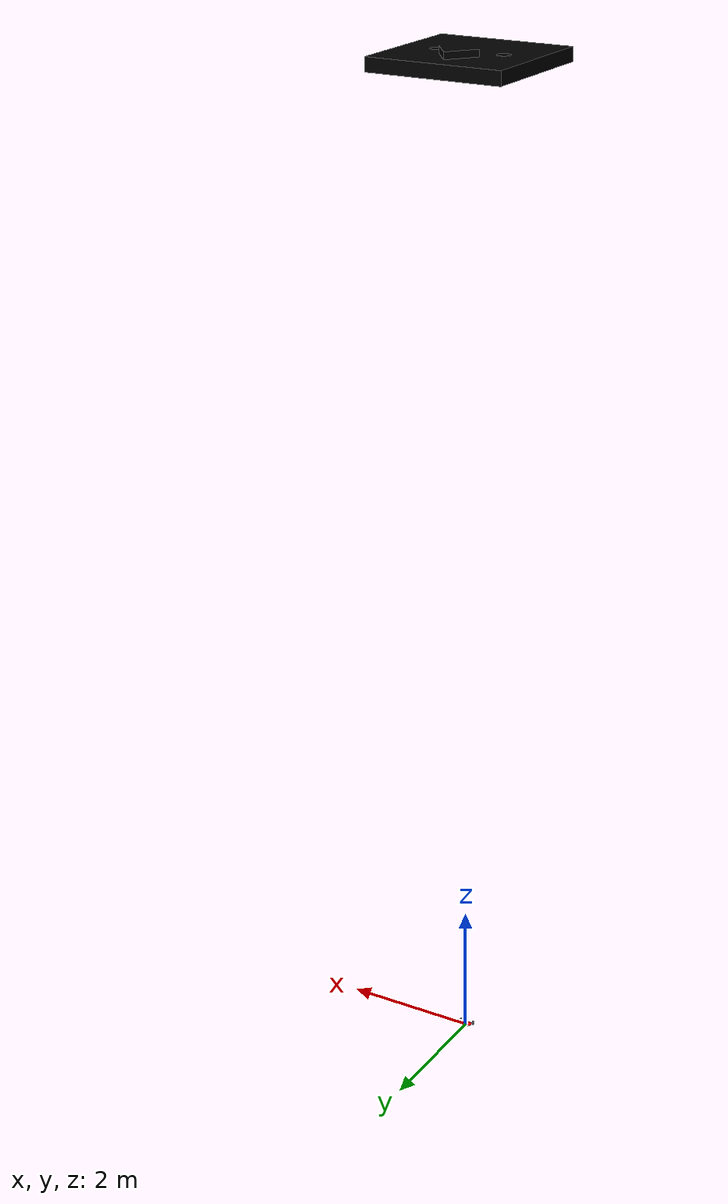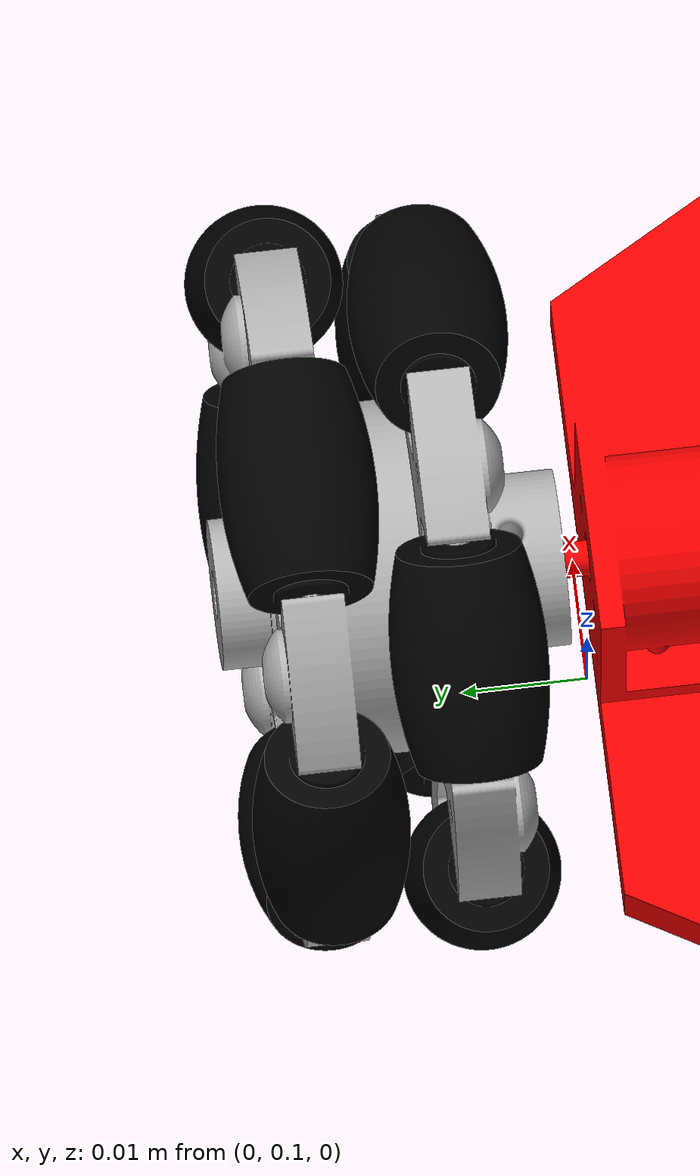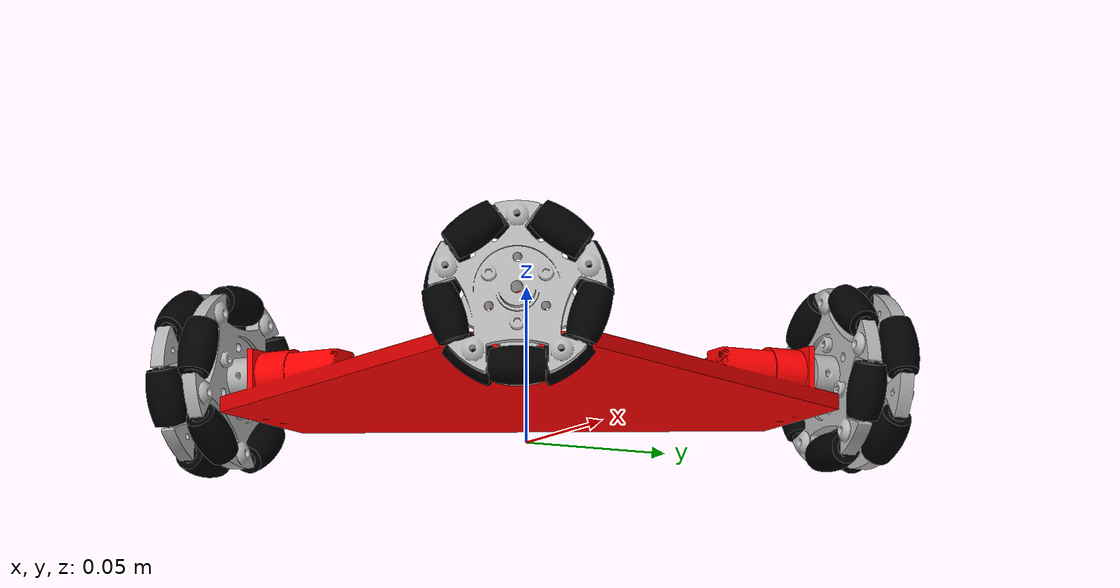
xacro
<?xml version="1.0"?>
<robot xmlns:xacro="http://www.ros.org/wiki/xacro" name="robot_name">

    <material name="black">
        <color rgba="0 0 0 1.0"/>
    </material>

    <material name="red">
        <color rgba="1.0 0 0 1.0"/>
    </material>

    <material name="LightGrey">
        <color rgba="0.7 0.7 0.7 1.0"/>
    </material>

    <link name="base_footprint">
        <origin xyz="0 0 0" rpy="0 0 0"/>
    </link>
    <link name="base_link">
        <visual>
            <geometry>
                <mesh filename="package://kiwi_drive/meshes/kiwibasev4_scaled.stl"/>
            </geometry>
            <material name="red"/>
        </visual>
        <collision>
            <geometry>
                <mesh filename="package://kiwi_drive/meshes/kiwibasev4_scaled.stl"/>
            </geometry>
        </collision>
        <inertial>
            <mass value="1"/> <!-- 0.918828 just for simulation, the actual mass is slightly diffrent -->
            <origin xyz="0.0 0.0 0.0" rpy="0.0 0.0 0.0"/>

                <inertia ixx="0.0025083"
                         ixy="0.0"
                         ixz="0.0"
                         iyy="0.0025083"
                         iyz="0.0"
                         izz="5e-3"/>
        </inertial>
    </link>

    <joint name="base_joint" type="fixed">
        <parent link="base_footprint"/>
        <child link="base_link"/>
        <origin xyz="0 0 0.014667" rpy="0 0 0"/>
        <axis xyz="0 0 1"/>
    </joint>

    <xacro:property name="pi" value="3.1415"/>
    <xacro:property name="castor_mass" value="0.014933" />
    <xacro:property name="wheel_mass" value="0.5" />

    <xacro:macro name="castor" params="parent_name name x y z r p yaw">
        <link name="${name}_link">
            <visual>
                <geometry>
                    <mesh filename="package://kiwi_drive/meshes/omniwheelcastororigin_scaled.stl"/>
                </geometry>
                <material name="black"/>
            </visual>
            <collision>
                <geometry>
                    <mesh filename="package://kiwi_drive/meshes/omniwheelcastororigin_scaled.stl"/>
                </geometry>
                <surface>
                    <friction>
                    <ode>
                        <mu>1.0</mu>
                        <mu2>1.0</mu2>
                        <slip1>0.0</slip1>
                        <slip2>0.0</slip2>
                    </ode>
                    </friction>
                    <contact>
                    <ode>
                        <min_depth>0.01</min_depth>
                    </ode>
                    </contact>
                </surface>
            </collision>
            <inertial>
                <mass value="${castor_mass}"/>
                <origin xyz="0.0 0.0 0.0" rpy="0.0 0.0 0.0"/>
                <inertia ixx="0.000005"
                         ixy="0.0"
                         ixz="0.0"
                         iyy="0.000005"
                         iyz="0.0"
                         izz="0.000005"/>
            </inertial>
        </link>
        <joint name="${name}_joint" type="fixed">
            <parent link="${parent_name}"/>
            <child link="${name}_link"/>
            <origin xyz="${x/1000} ${y/1000} ${z/1000}" rpy="${r} ${p} ${yaw}"/>
            <axis xyz="1 0 0"/>
            <dynamics friction="0.9"/>
        </joint>

        <gazebo reference="${name}_link">
            <material>Gazebo/Black</material>
        </gazebo>
    </xacro:macro>

    <xacro:macro name="wheel" params="name x y z r p yaw">
        <link name="wheel_${name}_link">
            <visual>
                <geometry>
                    <mesh filename="package://kiwi_drive/meshes/omniwheelorigin_scaled.stl"/>
                </geometry>
                <material name="LightGrey"/>
            </visual>
            <collision>
                <geometry>
                    <mesh filename="package://kiwi_drive/meshes/omniwheelorigin_scaled.stl"/>
                </geometry>
                <surface>
                    <friction>
                    <ode>
                        <mu>1.0</mu>
                        <mu2>1.0</mu2>
                        <slip1>0.0</slip1>
                        <slip2>0.0</slip2>
                    </ode>
                    </friction>
                    <contact>
                    <ode>
                        <min_depth>0.01</min_depth>
                    </ode>
                    </contact>
                </surface>
            </collision>
            <inertial>
                <mass value="${wheel_mass}"/>
                <origin xyz="0.0 0.0 0.015" rpy="0.0 0.0 0.0"/>
                <inertia ixx="3.893177779e-5"
                         ixy="0.0"
                         ixz="0.0"
                         iyy="3.893177779e-5"
                         iyz="0.0"
                         izz="5.378022225e-5"/>
            </inertial>
        </link>

        <joint name="wheel_${name}_joint" type="continuous">
            <parent link="base_link"/>
            <child link="wheel_${name}_link"/>
            <!-- mm to meters convertion required/-->
            <origin xyz="${x/1000} ${y/1000} ${z/1000}" rpy="${r} ${p} ${yaw}"/>
            <axis xyz="0 0 1"/>
            <limit effort="1" velocity="100.0"/>
            <dynamics damping="0.0" friction="0.6"/>
        </joint>

        <gazebo reference="wheel_${name}_link">
            <material>Gazebo/LightGrey</material>
        </gazebo>

        <transmission name="${name}_wheel_transmission" type="SimpleTransmission">
            <type>transmission_interface/SimpleTransmission</type>
            <actuator name="wheel_${name}_actuator">
                <mechanicalReduction>1</mechanicalReduction>
                <hardwareInterface>VelocityJointInterface</hardwareInterface>
            </actuator>
            <joint name="wheel_${name}_joint">
                <hardwareInterface>hardware_interface/VelocityJointInterface</hardwareInterface>
            </joint>
        </transmission>

        <xacro:castor parent_name="wheel_${name}_link" name="${name}_castor_1" x="0.0" y="24.059" z="9.0" r="0.0" p="0.0" yaw="0.0"/>
        <xacro:castor parent_name="wheel_${name}_link" name="${name}_castor_2" x="22.882" y="7.435" z="9.0" r="0.0" p="0.0" yaw="${(pi/180)*108*1}"/>
        <xacro:castor parent_name="wheel_${name}_link" name="${name}_castor_3" x="14.142" y="-19.464" z="9.0" r="0.0" p="0.0" yaw="${(pi/180)*108*2}"/>
        <xacro:castor parent_name="wheel_${name}_link" name="${name}_castor_4" x="-14.142" y="-19.464" z="9.0" r="0.0" p="0.0" yaw="${(pi/180)*108*3}"/>
        <xacro:castor parent_name="wheel_${name}_link" name="${name}_castor_5" x="-22.882" y="7.435" z="9.0" r="0.0" p="0.0" yaw="${(pi/180)*108*4}"/>
        <xacro:castor parent_name="wheel_${name}_link" name="${name}_castor_6" x="0.0" y="-24.059" z="21.0" r="0.0" p="0.0" yaw="0.0"/>
        <xacro:castor parent_name="wheel_${name}_link" name="${name}_castor_7" x="-22.882" y="-7.435" z="21.0" r="0.0" p="0.0" yaw="${(pi/180)*108*1}"/>
        <xacro:castor parent_name="wheel_${name}_link" name="${name}_castor_8" x="-14.142" y="19.464" z="21.0" r="0.0" p="0.0" yaw="${(pi/180)*108*2}"/>
        <xacro:castor parent_name="wheel_${name}_link" name="${name}_castor_9" x="14.142" y="19.464" z="21.0" r="0.0" p="0.0" yaw="${(pi/180)*108*3}"/>
        <xacro:castor parent_name="wheel_${name}_link" name="${name}_castor_10" x="22.882" y="-7.435" z="21.0" r="0.0" p="0.0" yaw="${(pi/180)*108*4}"/>
    </xacro:macro>

    <xacro:wheel name="back" x="0.33" y="102.067" z="14.667" r="${-pi/2}" p="0.0" yaw="0.0"/>
    <xacro:wheel name="left" x="88.263" y="-50.237" z="14.667" r="${pi/2}" p="0.0" yaw="${pi/3}"/>
    <xacro:wheel name="right" x="-87.603" y="-50.237" z="14.667" r="${pi/2}" p="0.0" yaw="${-pi/3}"/>

    <link name="imu_link">
        <visual>
            <geometry>
                <mesh filename="package://kiwi_drive/meshes/imuorigin_scaled.stl"/>
            </geometry>
            <material name="black"/>
        </visual>
        <collision>
            <geometry>
                <mesh filename="package://kiwi_drive/meshes/imuorigin_scaled.stl"/>
            </geometry>
        </collision>
        <inertial>
            <mass value="0.001"/> just for simulation, the actual mass is slightly diffrent
            <origin xyz="0.0 6.5e-5 1.023e-3" rpy="0.0 0.0 0.0"/>
                <inertia ixx="2.13412e-7"
                         ixy="0.0"
                         ixz="0.0"
                         iyy="2.09261e-7"
                         iyz="-6.03e-10"
                         izz="4.18117e-7"/>
        </inertial>
    </link>

    <joint name="imu_joint" type="fixed">
        <parent link="base_link"/>
        <child link="imu_link"/>
        <origin xyz="0 0 0.005" rpy="0 0 0"/>
    </joint>

    <!-- Gazebo plugin for ROS Control -->
    <gazebo>
        <plugin name="gazebo_ros_control" filename="libgazebo_ros_control.so">
            <robotNamespace>/</robotNamespace>
        </plugin>

        <plugin name="WheelSlipPlugin" filename="libWheelSlipPlugin.so">
            <wheel link_name="wheel_back_link">
                <slip_compliance_lateral>0.0</slip_compliance_lateral>
                <slip_compliance_longitudinal>0.1</slip_compliance_longitudinal>
                <wheel_normal_force>100</wheel_normal_force>
                <wheel_radius>0.014667</wheel_radius>
            </wheel>
            <wheel link_name="wheel_left_link">
                <slip_compliance_lateral>0.0</slip_compliance_lateral>
                <slip_compliance_longitudinal>0.1</slip_compliance_longitudinal>
                <wheel_normal_force>100</wheel_normal_force>
                <wheel_radius>0.014667</wheel_radius>
            </wheel>
            <wheel link_name="wheel_right_link">
                <slip_compliance_lateral>0.0</slip_compliance_lateral>
                <slip_compliance_longitudinal>0.1</slip_compliance_longitudinal>
                <wheel_normal_force>100</wheel_normal_force>
                <wheel_radius>0.014667</wheel_radius>
            </wheel>
        </plugin>

    </gazebo>

    <gazebo reference="base_link">
        <material>Gazebo/Red</material>
    </gazebo>

</robot>
